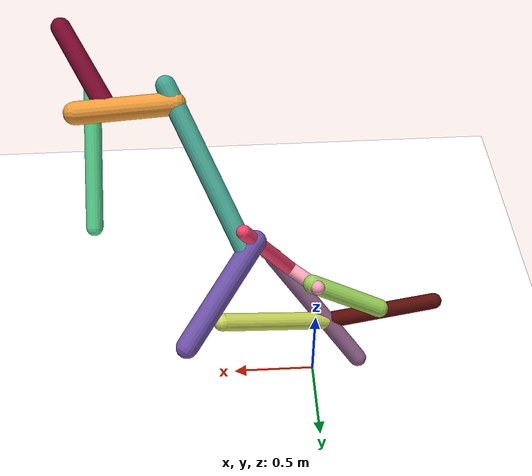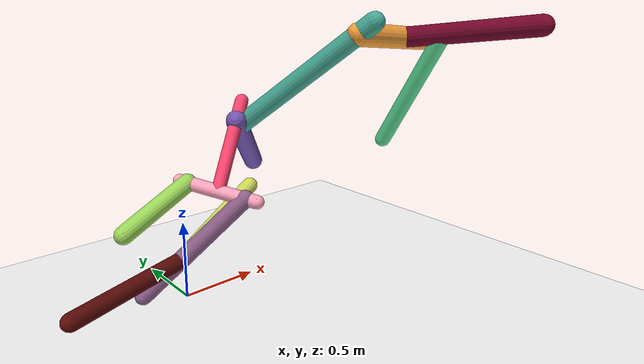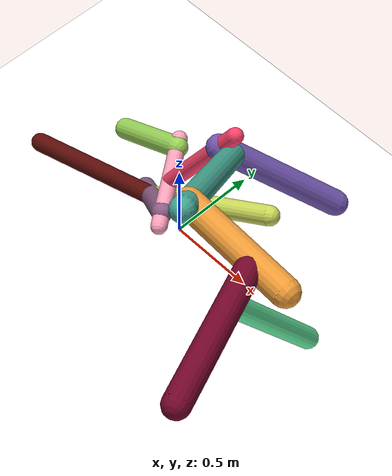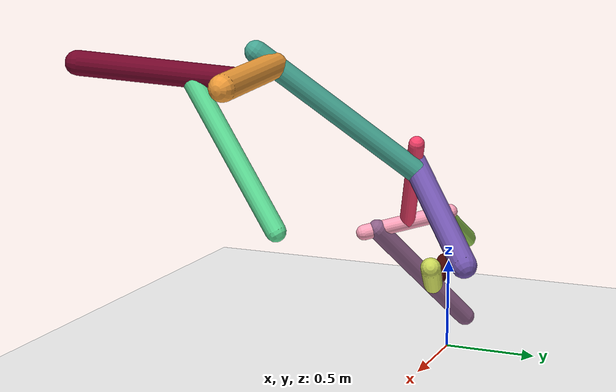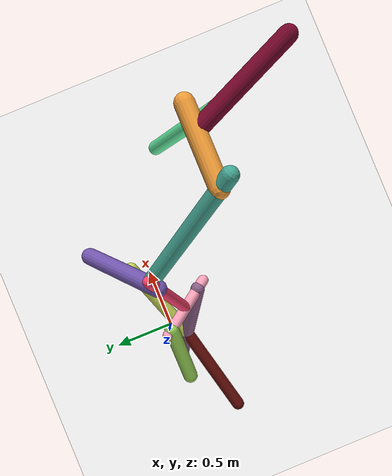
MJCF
<mujoco model="morphology">
  <option timestep="0.01"/>
  <default>
    <default class="/"/>
    <default class="0/"/>
    <default class="0/1/"/>
    <default class="0/2/"/>
    <default class="0/2/3/"/>
    <default class="0/2/3/4/"/>
    <default class="0/5/"/>
    <default class="0/5/6/"/>
    <default class="0/5/6/7/"/>
    <default class="0/5/6/7/8/"/>
    <default class="0/5/6/7/8/9/"/>
    <default class="0/5/6/7/8/9/10/"/>
  </default>
  <asset>
    <texture name="texplane" type="2d" builtin="checker" rgb1="0.10000000000000001 0.20000000000000001 0.29999999999999999" rgb2="0.20000000000000001 0.29999999999999999 0.40000000000000002" width="300" height="300"/>
    <material name="MatPlane" class="/" texture="texplane" texrepeat="20 20" specular="1" shininess="1" reflectance="0.5"/>
  </asset>
  <worldbody>
    <light name="//unnamed_light_0" class="/" directional="true" pos="0 0 1.5" dir="0 0 -1.3" cutoff="100" exponent="1" diffuse="1 1 1" specular="0.10000000000000001 0.10000000000000001 0.10000000000000001"/>
    <geom name="ground" class="/" type="plane" size="15 15 0.5" material="MatPlane" rgba="1 1 1 1"/>
    <site name="body" class="/" size="9.9999999999999995e-07 9.9999999999999995e-07 9.9999999999999995e-07" pos="0 0 0.77915076017379759"/>
    <body pos="0 0 0.77915076017379759" name="0/">
      <freejoint name="0/"/>
      <geom name="0/geom" class="0/" type="capsule" contype="1" conaffinity="1" condim="3" size="0.043015112483510913" rgba="0.99436244697649734 0.63884202816753699 0.73388731775960359 1" friction="0.59999999999999998 0.10000000000000001 0.10000000000000001" fromto="0 0 0 0.27884814239848543 -0.40262197090721935 -0.095510877040450248"/>
      <site name="0/end0" class="0/" size="0.0050000000000000001" pos="0.27884814239848543 -0.40262197090721935 -0.095510877040450248"/>
      <site name="0/attach1" class="0/" size="9.9999999999999995e-07 9.9999999999999995e-07 9.9999999999999995e-07" pos="0.027079875906656704 -0.039099966439368562 -0.00927538077085425"/>
      <body pos="0.027079875906656704 -0.039099966439368562 -0.00927538077085425" name="0/1/">
        <joint name="0/1/joint/" class="0/" type="hinge" axis="0 1 0" limited="true" range="-41.561733669398201 41.561733669398201"/>
        <geom name="0/1/geom" class="0/1/" type="capsule" contype="1" conaffinity="1" condim="3" size="0.056564779209305013" rgba="0.60122489427861248 0.82683027392883846 0.3406530282628325 1" friction="0.59999999999999998 0.10000000000000001 0.10000000000000001" fromto="0 0 0 -0.41607637469732611 0.016606826490903837 -0.22916429579359998"/>
        <site name="0/1/end1" class="0/1/" size="0.0050000000000000001" pos="-0.41607637469732611 0.016606826490903837 -0.22916429579359998"/>
      </body>
      <site name="0/attach2" class="0/" size="9.9999999999999995e-07 9.9999999999999995e-07 9.9999999999999995e-07" pos="0.23574486476427597 -0.34038620901770161 -0.08074717155275779"/>
      <body pos="0.23574486476427597 -0.34038620901770161 -0.08074717155275779" name="0/2/">
        <joint name="0/2/joint/" class="0/" type="hinge" axis="0 1 0" limited="true" range="-46.584639452804375 46.584639452804375"/>
        <geom name="0/2/geom" class="0/2/" type="capsule" contype="1" conaffinity="1" condim="3" size="0.054564594226304192" rgba="0.55672127931219184 0.37819417849107839 0.53876740957329594 1" friction="0.59999999999999998 0.10000000000000001 0.10000000000000001" fromto="0 0 0 -0.5215372775971463 0.35387183706589287 -0.5984035720530283"/>
        <site name="0/2/end2" class="0/2/" size="0.0050000000000000001" pos="-0.5215372775971463 0.35387183706589287 -0.5984035720530283"/>
        <site name="0/2/attach3" class="0/2/" size="9.9999999999999995e-07 9.9999999999999995e-07 9.9999999999999995e-07" pos="-0.32559943594699181 0.22092470758184393 -0.3735876108929499"/>
        <body pos="-0.32559943594699181 0.22092470758184393 -0.3735876108929499" name="0/2/3/">
          <joint name="0/2/3/joint/" class="0/2/" type="hinge" axis="-0.79992687793018247 -0.3054597323368281 0.51653784167821082" limited="true" range="-61.718857631620963 61.718857631620963"/>
          <geom name="0/2/3/geom" class="0/2/3/" type="capsule" contype="1" conaffinity="1" condim="3" size="0.05415668258037204" rgba="0.79919991866466711 0.85352548364848402 0.34658403529720483 1" friction="0.59999999999999998 0.10000000000000001 0.10000000000000001" fromto="0 0 0 0.66153608428045052 0.20541102776931575 0.27844485925486984"/>
          <site name="0/2/3/end3" class="0/2/3/" size="0.0050000000000000001" pos="0.66153608428045052 0.20541102776931575 0.27844485925486984"/>
          <site name="0/2/3/attach4" class="0/2/3/" size="9.9999999999999995e-07 9.9999999999999995e-07 9.9999999999999995e-07" pos="0.00081987950061840689 0.00025457763358774528 0.00034509263754517108"/>
          <body pos="0.00081987950061840689 0.00025457763358774528 0.00034509263754517108" name="0/2/3/4/">
            <joint name="0/2/3/4/joint/" class="0/2/3/" type="hinge" axis="5.5511151231257827e-17 -0.80472290744530328 0.59365060619254628" limited="true" range="-34.765164032272715 34.765164032272715"/>
            <geom name="0/2/3/4/geom" class="0/2/3/4/" type="capsule" contype="1" conaffinity="1" condim="3" size="0.051191852958503425" rgba="0.35268731511744844 0.044380840150273992 0.030911294126051092 1" friction="0.59999999999999998 0.10000000000000001 0.10000000000000001" fromto="0 0 0 -0.72084816725002376 -0.16466733543979406 -0.052556540937386043"/>
            <site name="0/2/3/4/end4" class="0/2/3/4/" size="0.0050000000000000001" pos="-0.72084816725002376 -0.16466733543979406 -0.052556540937386043"/>
          </body>
        </body>
      </body>
      <site name="0/attach5" class="0/" size="9.9999999999999995e-07 9.9999999999999995e-07 9.9999999999999995e-07" pos="0.13913917049844049 -0.20089962434256478 -0.04765785452497593"/>
      <body pos="0.13913917049844049 -0.20089962434256478 -0.04765785452497593" name="0/5/">
        <joint name="0/5/joint/" class="0/" type="hinge" axis="0 1 0" limited="true" range="-65.96711223726453 65.96711223726453"/>
        <geom name="0/5/geom" class="0/5/" type="capsule" contype="1" conaffinity="1" condim="3" size="0.042660809227028987" rgba="0.98777641231102686 0.25704212188972797 0.42687495383629559 1" friction="0.59999999999999998 0.10000000000000001 0.10000000000000001" fromto="0 0 0 0.29620060791310543 0.15229458815875629 0.49412310179426999"/>
        <site name="0/5/end5" class="0/5/" size="0.0050000000000000001" pos="0.29620060791310543 0.15229458815875629 0.49412310179426999"/>
        <site name="0/5/attach6" class="0/5/" size="9.9999999999999995e-07 9.9999999999999995e-07 9.9999999999999995e-07" pos="0.2281981344133806 0.11733041719238364 0.38068108905800929"/>
        <body pos="0.2281981344133806 0.11733041719238364 0.38068108905800929" name="0/5/6/">
          <joint name="0/5/6/joint/" class="0/5/" type="hinge" axis="0 -0.95563934964052932 0.29453935801285724" limited="true" range="-36.736170821426917 36.736170821426917"/>
          <geom name="0/5/6/geom" class="0/5/6/" type="capsule" contype="1" conaffinity="1" condim="3" size="0.065978841122629361" rgba="0.44906082392068358 0.33757769622876255 0.6892644234280364 1" friction="0.59999999999999998 0.10000000000000001 0.10000000000000001" fromto="0 0 0 0.41572814307105865 0.41499194750514068 -0.42072768023285562"/>
          <site name="0/5/6/end6" class="0/5/6/" size="0.0050000000000000001" pos="0.41572814307105865 0.41499194750514068 -0.42072768023285562"/>
          <site name="0/5/6/attach7" class="0/5/6/" size="9.9999999999999995e-07 9.9999999999999995e-07 9.9999999999999995e-07" pos="0.049595224361611678 0.049507398254877585 -0.05019165539803818"/>
          <body pos="0.049595224361611678 0.049507398254877585 -0.05019165539803818" name="0/5/6/7/">
            <joint name="0/5/6/7/joint/" class="0/5/6/" type="hinge" axis="5.5511151231257827e-17 0.71194304743457582 0.70223720864788253" limited="true" range="-30.015064145404352 30.015064145404352"/>
            <geom name="0/5/6/7/geom" class="0/5/6/7/" type="capsule" contype="1" conaffinity="1" condim="3" size="0.060685901234033723" rgba="0.26951883060154458 0.65140656090102655 0.57627707095509684 1" friction="0.59999999999999998 0.10000000000000001 0.10000000000000001" fromto="0 0 0 0.4275349942954767 -0.7436592246922894 0.65601263883568484"/>
            <site name="0/5/6/7/end7" class="0/5/6/7/" size="0.0050000000000000001" pos="0.4275349942954767 -0.7436592246922894 0.65601263883568484"/>
            <site name="0/5/6/7/attach8" class="0/5/6/7/" size="9.9999999999999995e-07 9.9999999999999995e-07 9.9999999999999995e-07" pos="0.38144114235294907 -0.66348305512481986 0.58528591505779259"/>
            <body pos="0.38144114235294907 -0.66348305512481986 0.58528591505779259" name="0/5/6/7/8/">
              <joint name="0/5/6/7/8/joint/" class="0/5/6/7/" type="hinge" axis="0.9182914112215006 0.29689581169378654 -0.2619041066411758" limited="true" range="-49.973367708814791 49.973367708814791"/>
              <geom name="0/5/6/7/8/geom" class="0/5/6/7/8/" type="capsule" contype="1" conaffinity="1" condim="3" size="0.068808973629693973" rgba="0.94262760056647132 0.6150810758754689 0.22286845003041156 1" friction="0.59999999999999998 0.10000000000000001 0.10000000000000001" fromto="0 0 0 0.57789395606887228 -0.0060273610285225265 -0.047798217860069991"/>
              <site name="0/5/6/7/8/end8" class="0/5/6/7/8/" size="0.0050000000000000001" pos="0.57789395606887228 -0.0060273610285225265 -0.047798217860069991"/>
              <site name="0/5/6/7/8/attach9" class="0/5/6/7/8/" size="9.9999999999999995e-07 9.9999999999999995e-07 9.9999999999999995e-07" pos="0.38577607691091936 -0.0040235957951982289 -0.031907945697901827"/>
              <body pos="0.38577607691091936 -0.0040235957951982289 -0.031907945697901827" name="0/5/6/7/8/9/">
                <joint name="0/5/6/7/8/9/joint/" class="0/5/6/7/8/" type="hinge" axis="0.08307787235100203 0.12467685092037978 0.98871317881891718" limited="true" range="-55.660982622044472 55.660982622044472"/>
                <geom name="0/5/6/7/8/9/geom" class="0/5/6/7/8/9/" type="capsule" contype="1" conaffinity="1" condim="3" size="0.062517770754728683" rgba="0.45511205989432024 0.020163193478851427 0.16335284690817986 1" friction="0.59999999999999998 0.10000000000000001 0.10000000000000001" fromto="0 0 0 0.31077786749078418 -0.72611973424082177 0.08620882132502139"/>
                <site name="0/5/6/7/8/9/end9" class="0/5/6/7/8/9/" size="0.0050000000000000001" pos="0.31077786749078418 -0.72611973424082177 0.08620882132502139"/>
                <site name="0/5/6/7/8/9/attach10" class="0/5/6/7/8/9/" size="9.9999999999999995e-07 9.9999999999999995e-07 9.9999999999999995e-07" pos="0.097584814272933862 -0.22800291403603226 0.027069726314858066"/>
                <body pos="0.097584814272933862 -0.22800291403603226 0.027069726314858066" name="0/5/6/7/8/9/10/">
                  <geom name="0/5/6/7/8/9/10/geom" class="0/5/6/7/8/9/10/" type="capsule" contype="1" conaffinity="1" condim="3" size="0.051994355882432293" rgba="0.3792877658548488 0.90136663688728436 0.6116420560035144 1" friction="0.59999999999999998 0.10000000000000001 0.10000000000000001" fromto="0 0 0 0.040886375605297065 0.47733415245545618 -0.7317407402433439"/>
                  <site name="0/5/6/7/8/9/10/end10" class="0/5/6/7/8/9/10/" size="0.0050000000000000001" pos="0.040886375605297065 0.47733415245545618 -0.7317407402433439"/>
                </body>
              </body>
            </body>
          </body>
        </body>
      </body>
      <camera name="0/iso" class="0/" mode="trackcom" pos="-2.2999999999999998 -2.2999999999999998 1" xyaxes="0.45000000000000001 -0.45000000000000001 0 0.29999999999999999 0.14999999999999999 0.93999999999999995"/>
    </body>
  </worldbody>
  <actuator>
    <motor name="0/1/motor" class="0/1/" ctrllimited="true" ctrlrange="-1 1" gear="55" joint="0/1/joint/"/>
    <motor name="0/2/motor" class="0/2/" ctrllimited="true" ctrlrange="-1 1" gear="56" joint="0/2/joint/"/>
    <motor name="0/2/3/motor" class="0/2/3/" ctrllimited="true" ctrlrange="-1 1" gear="60" joint="0/2/3/joint/"/>
    <motor name="0/2/3/4/motor" class="0/2/3/4/" ctrllimited="true" ctrlrange="-1 1" gear="77" joint="0/2/3/4/joint/"/>
    <motor name="0/5/motor" class="0/5/" ctrllimited="true" ctrlrange="-1 1" gear="91" joint="0/5/joint/"/>
    <motor name="0/5/6/motor" class="0/5/6/" ctrllimited="true" ctrlrange="-1 1" gear="99" joint="0/5/6/joint/"/>
    <motor name="0/5/6/7/motor" class="0/5/6/7/" ctrllimited="true" ctrlrange="-1 1" gear="68" joint="0/5/6/7/joint/"/>
    <motor name="0/5/6/7/8/motor" class="0/5/6/7/8/" ctrllimited="true" ctrlrange="-1 1" gear="75" joint="0/5/6/7/8/joint/"/>
    <motor name="0/5/6/7/8/9/motor" class="0/5/6/7/8/9/" ctrllimited="true" ctrlrange="-1 1" gear="61" joint="0/5/6/7/8/9/joint/"/>
  </actuator>
  <sensor>
    <subtreelinvel name="velocity" body="0/"/>
  </sensor>
</mujoco>
